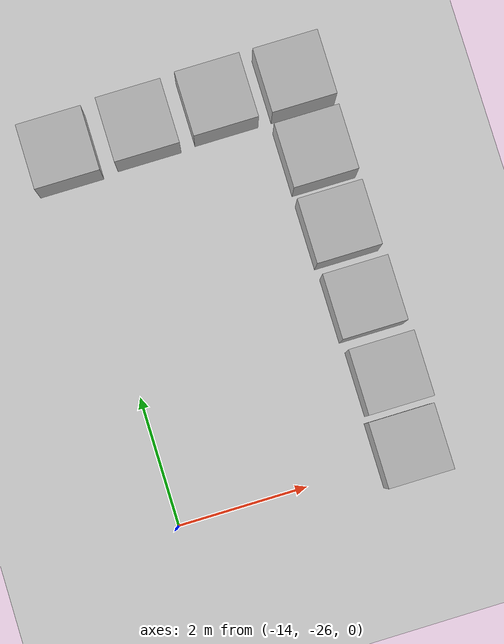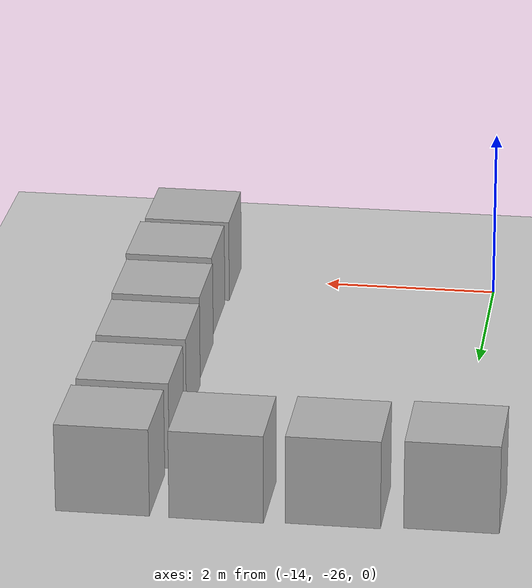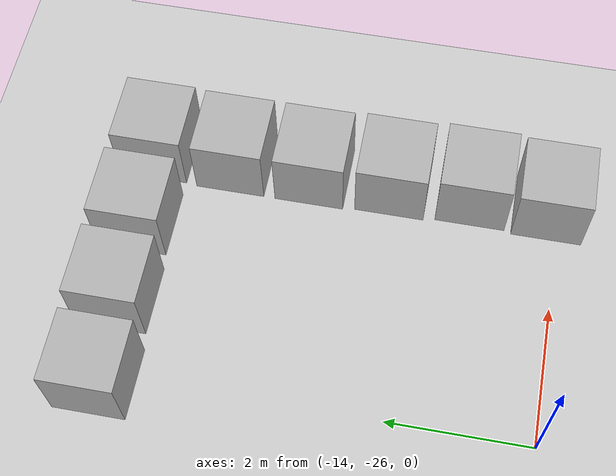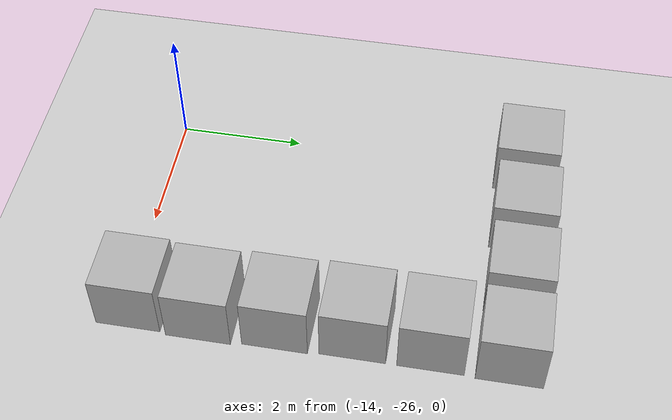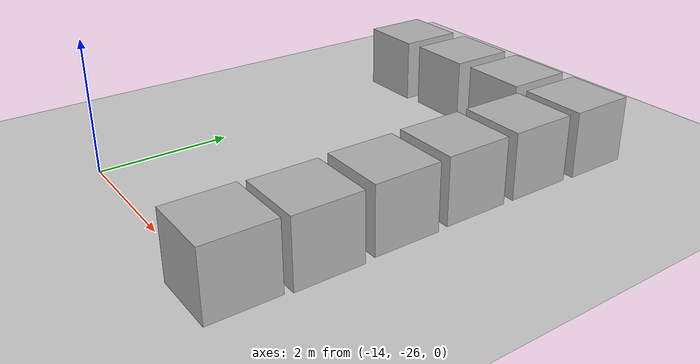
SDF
<sdf version="1.10">
 <world name="empty">
  <physics name="1ms" type="ignored">
   <max_step_size>0.001</max_step_size>
   <real_time_factor>1</real_time_factor>
   <real_time_update_rate>1000</real_time_update_rate>
  </physics>
  <plugin name="gz::sim::systems::Physics" filename="gz-sim-physics-system"/>
  <plugin name="gz::sim::systems::UserCommands" filename="gz-sim-user-commands-system"/>
  <plugin name="gz::sim::systems::SceneBroadcaster" filename="gz-sim-scene-broadcaster-system"/>
  <plugin name="gz::sim::systems::Contact" filename="gz-sim-contact-system"/>
  <plugin name="gz::sim::systems::Imu" filename="gz-sim-imu-system"/>
  <plugin name="gz::sim::systems::Sensors" filename="gz-sim-sensors-system">
   <render_engine>ogre2</render_engine>
  </plugin>
  <gravity>0 0 -9.8000000000000007</gravity>
  <magnetic_field>5.5644999999999998e-06 2.2875799999999999e-05 -4.2388400000000002e-05</magnetic_field>
  <atmosphere type="adiabatic"/>
  <scene>
   <ambient>0.400000006 0.400000006 0.400000006 1</ambient>
   <background>0.699999988 0.699999988 0.699999988 1</background>
   <shadows>true</shadows>
  </scene>
  <model name="ground_plane">
   <static>true</static>
   <link name="link">
    <collision name="collision">
     <geometry><plane><normal>0 0 1</normal><size>100 100</size></plane></geometry>
    </collision>
    <visual name="visual">
     <geometry><plane><normal>0 0 1</normal><size>100 100</size></plane></geometry>
     <material>
      <ambient>0.800000012 0.800000012 0.800000012 1</ambient>
      <diffuse>0.800000012 0.800000012 0.800000012 1</diffuse>
      <specular>0.800000012 0.800000012 0.800000012 1</specular>
     </material>
    </visual>
    <inertial>
     <mass>1</mass>
     <inertia><ixx>1</ixx><ixy>0</ixy><ixz>0</ixz><iyy>1</iyy><iyz>0</iyz><izz>1</izz></inertia>
    </inertial>
   </link>
  </model>
  <model name="box">
   <pose>-14.078661364543297 -20.168891582012844 0.5 0 0 0</pose>
   <link name="box_link">
    <inertial>
     <inertia><ixx>0.16666</ixx><ixy>0</ixy><ixz>0</ixz><iyy>0.16666</iyy><iyz>0</iyz><izz>0.16666</izz></inertia>
     <mass>1</mass>
    </inertial>
    <collision name="box_collision"><geometry><box><size>1 1 1</size></box></geometry></collision>
    <visual name="box_visual">
     <geometry><box><size>1 1 1</size></box></geometry>
     <material>
      <ambient>0.300000012 0.300000012 0.300000012 1</ambient>
      <diffuse>0.699999988 0.699999988 0.699999988 1</diffuse>
      <specular>1 1 1 1</specular>
     </material>
    </visual>
   </link>
   <static>false</static>
  </model>
  <model name="box_0">
   <pose>-12.842267133583185 -20.122560884233422 0.5 0 0 0</pose>
   <link name="box_link">
    <inertial>
     <inertia><ixx>0.16666</ixx><ixy>0</ixy><ixz>0</ixz><iyy>0.16666</iyy><iyz>0</iyz><izz>0.16666</izz></inertia>
     <mass>1</mass>
    </inertial>
    <collision name="box_collision"><geometry><box><size>1 1 1</size></box></geometry></collision>
    <visual name="box_visual">
     <geometry><box><size>1 1 1</size></box></geometry>
     <material>
      <ambient>0.300000012 0.300000012 0.300000012 1</ambient>
      <diffuse>0.699999988 0.699999988 0.699999988 1</diffuse>
      <specular>1 1 1 1</specular>
     </material>
    </visual>
   </link>
   <static>false</static>
  </model>
  <model name="box_1">
   <pose>-11.616232747522339 -20.091592691993405 0.5 0 0 0</pose>
   <link name="box_link">
    <inertial>
     <inertia><ixx>0.16666</ixx><ixy>0</ixy><ixz>0</ixz><iyy>0.16666</iyy><iyz>0</iyz><izz>0.16666</izz></inertia>
     <mass>1</mass>
    </inertial>
    <collision name="box_collision"><geometry><box><size>1 1 1</size></box></geometry></collision>
    <visual name="box_visual">
     <geometry><box><size>1 1 1</size></box></geometry>
     <material>
      <ambient>0.300000012 0.300000012 0.300000012 1</ambient>
      <diffuse>0.699999988 0.699999988 0.699999988 1</diffuse>
      <specular>1 1 1 1</specular>
     </material>
    </visual>
   </link>
   <static>false</static>
  </model>
  <model name="box_2">
   <pose>-10.40806421931898 -20.093748956158958 0.5 0 0 0</pose>
   <link name="box_link">
    <inertial>
     <inertia><ixx>0.16666</ixx><ixy>0</ixy><ixz>0</ixz><iyy>0.16666</iyy><iyz>0</iyz><izz>0.16666</izz></inertia>
     <mass>1</mass>
    </inertial>
    <collision name="box_collision"><geometry><box><size>1 1 1</size></box></geometry></collision>
    <visual name="box_visual">
     <geometry><box><size>1 1 1</size></box></geometry>
     <material>
      <ambient>0.300000012 0.300000012 0.300000012 1</ambient>
      <diffuse>0.699999988 0.699999988 0.699999988 1</diffuse>
      <specular>1 1 1 1</specular>
     </material>
    </visual>
   </link>
   <static>false</static>
  </model>
  <model name="box_3">
   <pose>-10.430899620056152 -21.253528594970703 0.5 0 0 0</pose>
   <link name="box_link">
    <inertial>
     <inertia><ixx>0.16666</ixx><ixy>0</ixy><ixz>0</ixz><iyy>0.16666</iyy><iyz>0</iyz><izz>0.16666</izz></inertia>
     <mass>1</mass>
    </inertial>
    <collision name="box_collision"><geometry><box><size>1 1 1</size></box></geometry></collision>
    <visual name="box_visual">
     <geometry><box><size>1 1 1</size></box></geometry>
     <material>
      <ambient>0.300000012 0.300000012 0.300000012 1</ambient>
      <diffuse>0.699999988 0.699999988 0.699999988 1</diffuse>
      <specular>1 1 1 1</specular>
     </material>
    </visual>
   </link>
   <static>false</static>
  </model>
  <model name="box_4">
   <pose>-10.432999610900879 -22.418340682983398 0.5 0 0 0</pose>
   <link name="box_link">
    <inertial>
     <inertia><ixx>0.16666</ixx><ixy>0</ixy><ixz>0</ixz><iyy>0.16666</iyy><iyz>0</iyz><izz>0.16666</izz></inertia>
     <mass>1</mass>
    </inertial>
    <collision name="box_collision"><geometry><box><size>1 1 1</size></box></geometry></collision>
    <visual name="box_visual">
     <geometry><box><size>1 1 1</size></box></geometry>
     <material>
      <ambient>0.300000012 0.300000012 0.300000012 1</ambient>
      <diffuse>0.699999988 0.699999988 0.699999988 1</diffuse>
      <specular>1 1 1 1</specular>
     </material>
    </visual>
   </link>
   <static>false</static>
  </model>
  <model name="box_5">
   <pose>-10.404199600219727 -23.587400436401367 0.5 0 0 0</pose>
   <link name="box_link">
    <inertial>
     <inertia><ixx>0.16666</ixx><ixy>0</ixy><ixz>0</ixz><iyy>0.16666</iyy><iyz>0</iyz><izz>0.16666</izz></inertia>
     <mass>1</mass>
    </inertial>
    <collision name="box_collision"><geometry><box><size>1 1 1</size></box></geometry></collision>
    <visual name="box_visual">
     <geometry><box><size>1 1 1</size></box></geometry>
     <material>
      <ambient>0.300000012 0.300000012 0.300000012 1</ambient>
      <diffuse>0.699999988 0.699999988 0.699999988 1</diffuse>
      <specular>1 1 1 1</specular>
     </material>
    </visual>
   </link>
   <static>false</static>
  </model>
  <model name="box_6">
   <pose>-10.366299629211426 -24.75096321105957 0.5 0 0 0</pose>
   <link name="box_link">
    <inertial>
     <inertia><ixx>0.16666</ixx><ixy>0</ixy><ixz>0</ixz><iyy>0.16666</iyy><iyz>0</iyz><izz>0.16666</izz></inertia>
     <mass>1</mass>
    </inertial>
    <collision name="box_collision"><geometry><box><size>1 1 1</size></box></geometry></collision>
    <visual name="box_visual">
     <geometry><box><size>1 1 1</size></box></geometry>
     <material>
      <ambient>0.300000012 0.300000012 0.300000012 1</ambient>
      <diffuse>0.699999988 0.699999988 0.699999988 1</diffuse>
      <specular>1 1 1 1</specular>
     </material>
    </visual>
   </link>
   <static>false</static>
  </model>
  <model name="box_7">
   <pose>-10.405160267799223 -25.848300465279394 0.5 0 0 0</pose>
   <link name="box_link">
    <inertial>
     <inertia><ixx>0.16666</ixx><ixy>0</ixy><ixz>0</ixz><iyy>0.16666</iyy><iyz>0</iyz><izz>0.16666</izz></inertia>
     <mass>1</mass>
    </inertial>
    <collision name="box_collision"><geometry><box><size>1 1 1</size></box></geometry></collision>
    <visual name="box_visual">
     <geometry><box><size>1 1 1</size></box></geometry>
     <material>
      <ambient>0.300000012 0.300000012 0.300000012 1</ambient>
      <diffuse>0.699999988 0.699999988 0.699999988 1</diffuse>
      <specular>1 1 1 1</specular>
     </material>
    </visual>
   </link>
   <static>false</static>
  </model>
  <light name="sun" type="directional">
   <pose>0 0 10 0 0 0</pose>
   <intensity>1</intensity>
   <direction>-0.5 0.10000000000000001 -0.90000000000000002</direction>
   <diffuse>0.800000012 0.800000012 0.800000012 1</diffuse>
   <specular>0.200000003 0.200000003 0.200000003 1</specular>
   <attenuation>
    <range>1000</range>
    <linear>0.01</linear>
    <constant>0.90000000000000002</constant>
    <quadratic>0.001</quadratic>
   </attenuation>
   <spot><inner_angle>0</inner_angle><outer_angle>0</outer_angle><falloff>0</falloff></spot>
  </light>
 </world>
</sdf>
